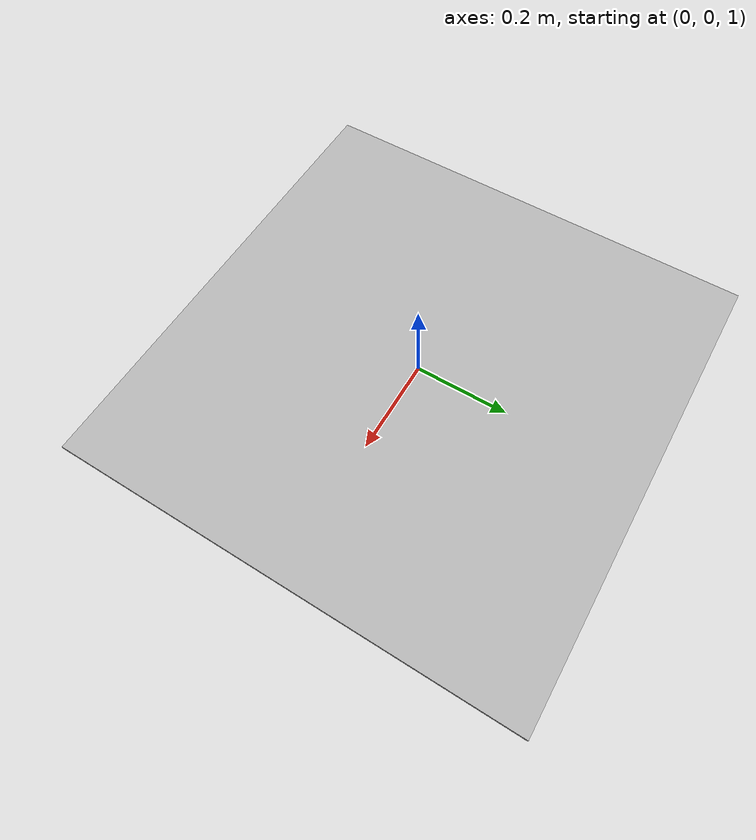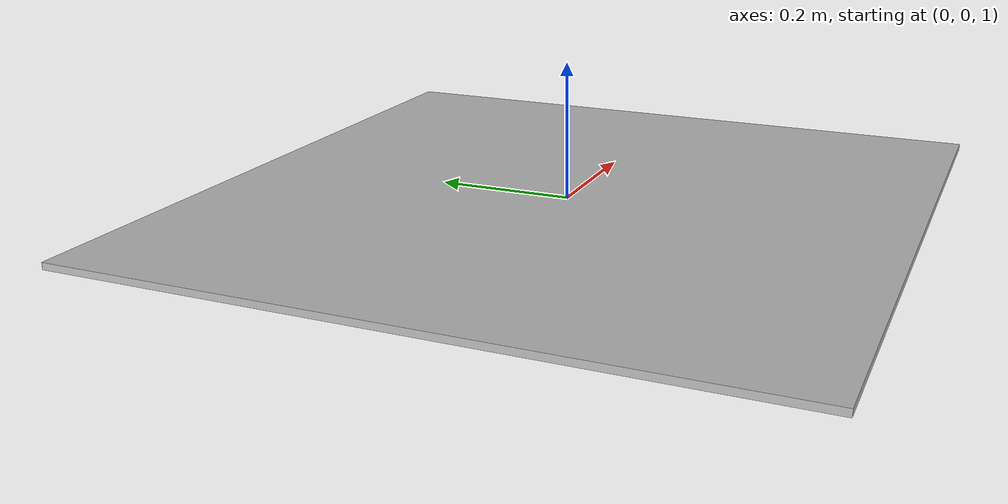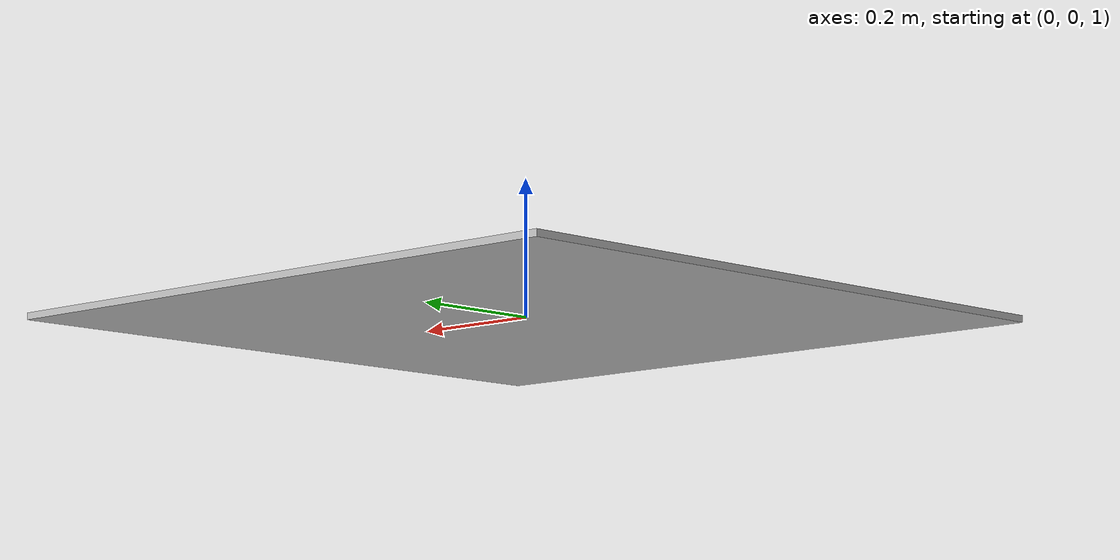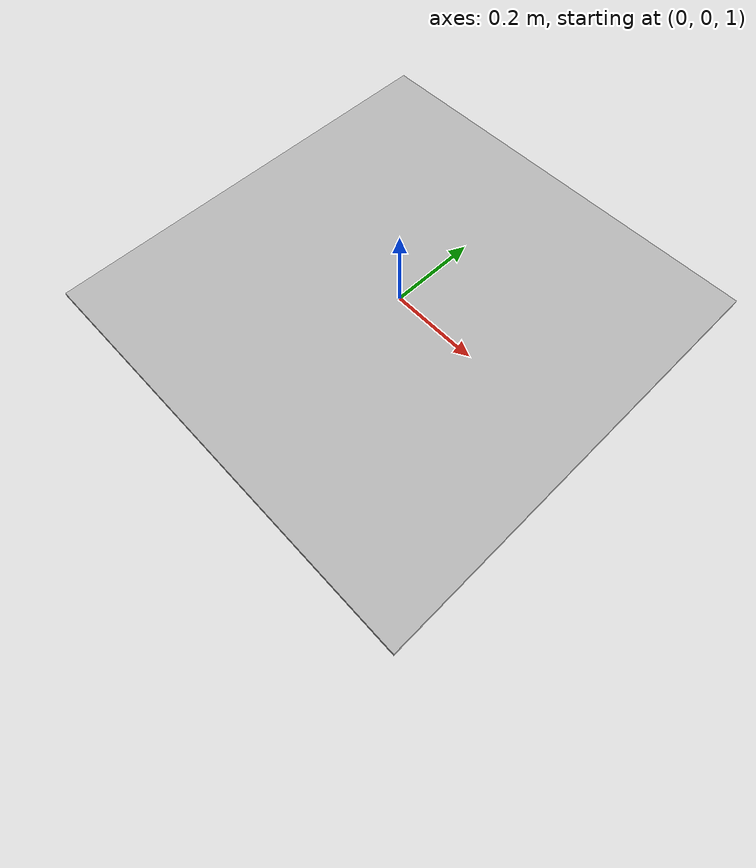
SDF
<?xml version="1.0" ?>
<sdf version="1.5">

  <model name="platform-model">
    <static>1</static>
    <pose>0 0 2.000000 -0.000000 0.000000 0</pose>

    <link name="platform">
      <pose>0.0 0.0 -1.00000 -0.000000 0.000000 0</pose>
      <collision name="platform-geom">
        <pose>0 -0.00000 0.000000 0.000000 0 -0.000000</pose>
        <geometry>
          <box>
            <size>1 1 .01</size>
          </box>
        </geometry>
        <surface>
          <friction>
            <ode>
              <mu>0.00000</mu>
              <mu2>0.00000</mu2>
              <fdir1>0.000000 0.000000 0.000000</fdir1>
              <slip1>0.000000</slip1>
              <slip2>0.000000</slip2>
            </ode>
          </friction>
          <bounce>
            <restitution_coefficient>1.0000000</restitution_coefficient>
            <threshold>0.000000</threshold>
          </bounce>
          <contact>
            <ode>
              <soft_cfm>0.000000</soft_cfm>
              <soft_erp>0.000000</soft_erp>
              <kp>1000000000000.000000</kp>
              <kd>1.000000</kd>
              <max_vel>0.000000</max_vel>
              <min_depth>0.001000</min_depth>
            </ode>
          </contact>
        </surface>
        <laser_retro>0.000000</laser_retro>
      </collision>
      <visual name="platform-visual">
        <pose>-0 -0.00000 0.000000 0.000000 0 -0.000000</pose>
        <geometry>
          <box>
            <size>1 1 .01</size>
          </box>
        </geometry>
        <cast_shadows>1</cast_shadows>
        <laser_retro>0.000000</laser_retro>
        <transparency>0.000000</transparency>
      </visual>
    </link>
  </model>
</sdf>
